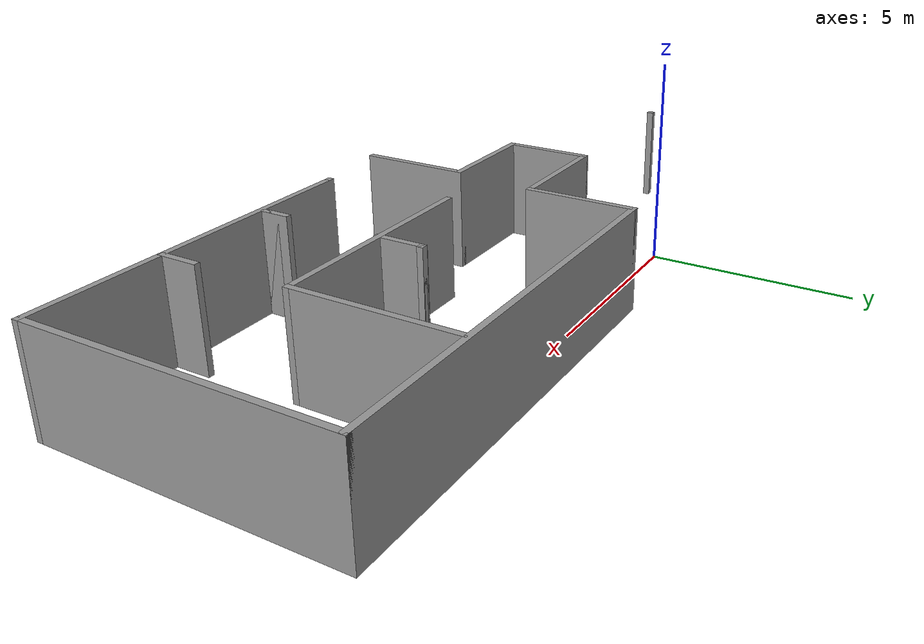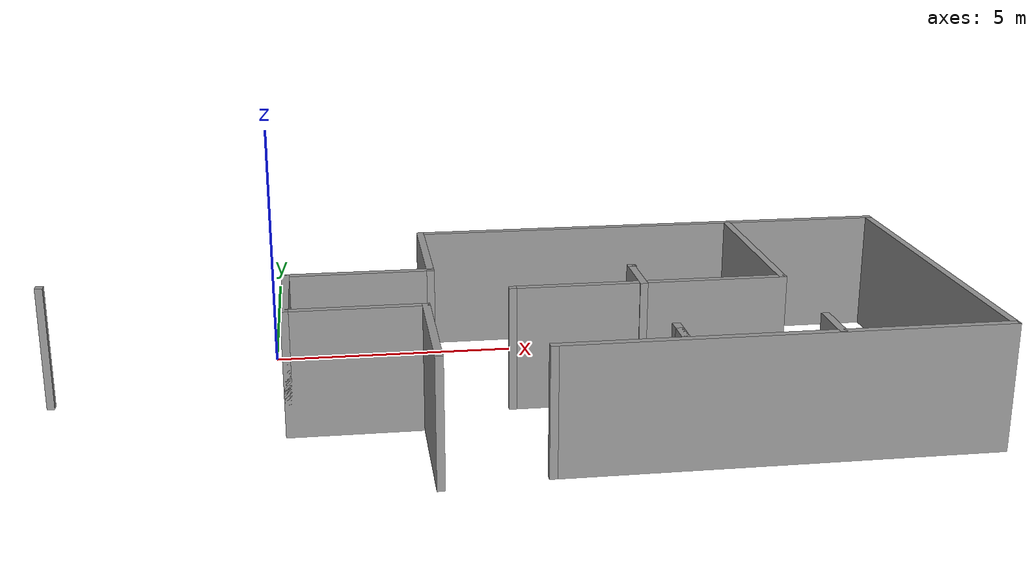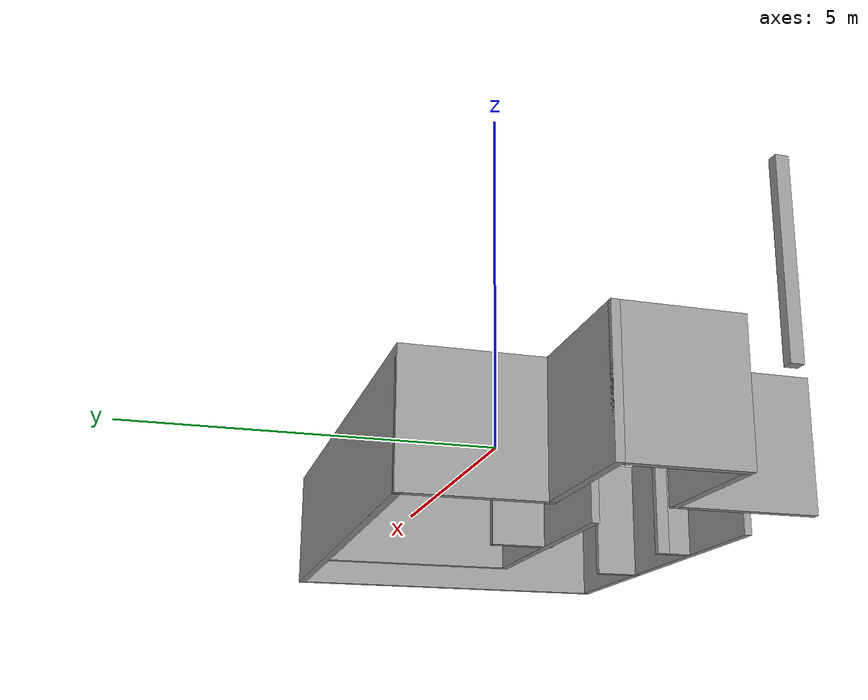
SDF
<?xml version='1.0'?>
<sdf version='1.6'>
  <model name='Untitled'>
    <pose frame=''>4.45 -2.99 0 0 -0 0</pose>
    <link name='Wall_1'>
      <collision name='Wall_1_Collision'>
        <geometry>
          <box>
            <size>0.17 0.15 2.5</size>
          </box>
        </geometry>
        <pose frame=''>0 0 1.25 0 -0 0</pose>
      </collision>
      <visual name='Wall_1_Visual'>
        <pose frame=''>0 0 1.25 0 -0 0</pose>
        <geometry>
          <box>
            <size>0.17 0.15 2.5</size>
          </box>
        </geometry>
        <material>
          <script>
            <uri>file://media/materials/scripts/gazebo.material</uri>
            <name>Gazebo/Grey</name>
          </script>
          <ambient>0 0 0 1</ambient>
        </material>
        <meta>
          <layer>0</layer>
        </meta>
      </visual>
      <pose frame=''>-8.81 0.94 0 0 -0 -1.5708</pose>
    </link>
    <link name='Wall_10'>
      <collision name='Wall_10_Collision'>
        <geometry>
          <box>
            <size>10.25 0.15 2.5</size>
          </box>
        </geometry>
        <pose frame=''>0 0 1.25 0 -0 0</pose>
      </collision>
      <visual name='Wall_10_Visual'>
        <pose frame=''>0 0 1.25 0 -0 0</pose>
        <geometry>
          <box>
            <size>10.25 0.15 2.5</size>
          </box>
        </geometry>
        <material>
          <script>
            <uri>file://media/materials/scripts/gazebo.material</uri>
            <name>Gazebo/Grey</name>
          </script>
          <ambient>1 1 1 1</ambient>
        </material>
        <meta>
          <layer>0</layer>
        </meta>
      </visual>
      <pose frame=''>3.76 3.65 0 0 -0 0</pose>
    </link>
    <link name='Wall_11'>
      <collision name='Wall_11_Collision'>
        <geometry>
          <box>
            <size>7.25 0.15 2.5</size>
          </box>
        </geometry>
        <pose frame=''>0 0 1.25 0 -0 0</pose>
      </collision>
      <visual name='Wall_11_Visual'>
        <pose frame=''>0 0 1.25 0 -0 0</pose>
        <geometry>
          <box>
            <size>7.25 0.15 2.5</size>
          </box>
        </geometry>
        <material>
          <script>
            <uri>file://media/materials/scripts/gazebo.material</uri>
            <name>Gazebo/Grey</name>
          </script>
          <ambient>1 1 1 1</ambient>
        </material>
        <meta>
          <layer>0</layer>
        </meta>
      </visual>
      <pose frame=''>8.81 0.1 0 0 -0 -1.5708</pose>
    </link>
    <link name='Wall_12'>
      <collision name='Wall_12_Collision'>
        <geometry>
          <box>
            <size>8.5 0.15 2.5</size>
          </box>
        </geometry>
        <pose frame=''>0 0 1.25 0 -0 0</pose>
      </collision>
      <visual name='Wall_12_Visual'>
        <pose frame=''>0 0 1.25 0 -0 0</pose>
        <geometry>
          <box>
            <size>8.5 0.15 2.5</size>
          </box>
        </geometry>
        <material>
          <script>
            <uri>file://media/materials/scripts/gazebo.material</uri>
            <name>Gazebo/Grey</name>
          </script>
          <ambient>1 1 1 1</ambient>
        </material>
        <meta>
          <layer>0</layer>
        </meta>
      </visual>
      <pose frame=''>4.635 -3.45 0 0 -0 3.14159</pose>
    </link>
    <link name='Wall_13'>
      <collision name='Wall_13_Collision'>
        <geometry>
          <box>
            <size>0.15 0.15 2.5</size>
          </box>
        </geometry>
        <pose frame=''>0 0 1.25 0 -0 0</pose>
      </collision>
      <visual name='Wall_13_Visual'>
        <pose frame=''>0 0 1.25 0 -0 0</pose>
        <geometry>
          <box>
            <size>0.15 0.15 2.5</size>
          </box>
        </geometry>
        <material>
          <script>
            <uri>file://media/materials/scripts/gazebo.material</uri>
            <name>Gazebo/Grey</name>
          </script>
          <ambient>1 1 1 1</ambient>
        </material>
        <meta>
          <layer>0</layer>
        </meta>
      </visual>
      <pose frame=''>0.459999 -3.45 0 0 -0 0</pose>
    </link>
    <link name='Wall_15'>
      <collision name='Wall_15_Collision'>
        <geometry>
          <box>
            <size>4 0.15 2.5</size>
          </box>
        </geometry>
        <pose frame=''>0 0 1.25 0 -0 0</pose>
      </collision>
      <visual name='Wall_15_Visual'>
        <pose frame=''>0 0 1.25 0 -0 0</pose>
        <geometry>
          <box>
            <size>4 0.15 2.5</size>
          </box>
        </geometry>
        <material>
          <script>
            <uri>file://media/materials/scripts/gazebo.material</uri>
            <name>Gazebo/Grey</name>
          </script>
          <ambient>1 1 1 1</ambient>
        </material>
        <meta>
          <layer>0</layer>
        </meta>
      </visual>
      <pose frame=''>5.53257 1.6473 0 0 -0 -1.5708</pose>
    </link>
    <link name='Wall_16'>
      <collision name='Wall_16_Collision'>
        <geometry>
          <box>
            <size>5.5 0.15 2.5</size>
          </box>
        </geometry>
        <pose frame=''>0 0 1.25 0 -0 0</pose>
      </collision>
      <visual name='Wall_16_Visual'>
        <pose frame=''>0 0 1.25 0 -0 0</pose>
        <geometry>
          <box>
            <size>5.5 0.15 2.5</size>
          </box>
        </geometry>
        <material>
          <script>
            <uri>file://media/materials/scripts/gazebo.material</uri>
            <name>Gazebo/Grey</name>
          </script>
          <ambient>1 1 1 1</ambient>
        </material>
        <meta>
          <layer>0</layer>
        </meta>
      </visual>
      <pose frame=''>2.85757 -0.277703 0 0 -0 3.14159</pose>
    </link>
    <link name='Wall_17'>
      <collision name='Wall_17_Collision'>
        <geometry>
          <box>
            <size>0.15 0.15 2.5</size>
          </box>
        </geometry>
        <pose frame=''>0 0 1.25 0 -0 0</pose>
      </collision>
      <visual name='Wall_17_Visual'>
        <pose frame=''>0 0 1.25 0 -0 0</pose>
        <geometry>
          <box>
            <size>0.15 0.15 2.5</size>
          </box>
        </geometry>
        <material>
          <script>
            <uri>file://media/materials/scripts/gazebo.material</uri>
            <name>Gazebo/Grey</name>
          </script>
          <ambient>1 1 1 1</ambient>
        </material>
        <meta>
          <layer>0</layer>
        </meta>
      </visual>
      <pose frame=''>0.182568 -0.277703 0 0 -0 0</pose>
    </link>
    <link name='Wall_19'>
      <collision name='Wall_19_Collision'>
        <geometry>
          <box>
            <size>1.25 0.15 2.5</size>
          </box>
        </geometry>
        <pose frame=''>0 0 1.25 0 -0 0</pose>
      </collision>
      <visual name='Wall_19_Visual'>
        <pose frame=''>0 0 1.25 0 -0 0</pose>
        <geometry>
          <box>
            <size>1.25 0.15 2.5</size>
          </box>
        </geometry>
        <material>
          <script>
            <uri>file://media/materials/scripts/gazebo.material</uri>
            <name>Gazebo/Grey</name>
          </script>
          <ambient>1 1 1 1</ambient>
        </material>
        <meta>
          <layer>0</layer>
        </meta>
      </visual>
      <pose frame=''>2.73955 0.238668 0 0 -0 1.5708</pose>
    </link>
    <link name='Wall_20'>
      <collision name='Wall_20_Collision'>
        <geometry>
          <box>
            <size>0.16 0.15 2.5</size>
          </box>
        </geometry>
        <pose frame=''>0 0 1.25 0 -0 0</pose>
      </collision>
      <visual name='Wall_20_Visual'>
        <pose frame=''>0 0 1.25 0 -0 0</pose>
        <geometry>
          <box>
            <size>0.16 0.15 2.5</size>
          </box>
        </geometry>
        <material>
          <script>
            <uri>file://media/materials/scripts/gazebo.material</uri>
            <name>Gazebo/Grey</name>
          </script>
          <ambient>1 1 1 1</ambient>
        </material>
        <meta>
          <layer>0</layer>
        </meta>
      </visual>
      <pose frame=''>2.74455 0.788668 0 0 -0 0</pose>
    </link>
    <link name='Wall_21'>
      <collision name='Wall_21_Collision'>
        <geometry>
          <box>
            <size>0.16 0.15 2.5</size>
          </box>
        </geometry>
        <pose frame=''>0 0 1.25 0 -0 0</pose>
      </collision>
      <visual name='Wall_21_Visual'>
        <pose frame=''>0 0 1.25 0 -0 0</pose>
        <geometry>
          <box>
            <size>0.16 0.15 2.5</size>
          </box>
        </geometry>
        <material>
          <script>
            <uri>file://media/materials/scripts/gazebo.material</uri>
            <name>Gazebo/Grey</name>
          </script>
          <ambient>1 1 1 1</ambient>
        </material>
        <meta>
          <layer>0</layer>
        </meta>
      </visual>
      <pose frame=''>2.75455 0.788668 0 0 -0 0</pose>
    </link>
    <link name='Wall_23'>
      <collision name='Wall_23_Collision'>
        <geometry>
          <box>
            <size>0.5 0.15 2.5</size>
          </box>
        </geometry>
        <pose frame=''>0 0 1.25 0 -0 0</pose>
      </collision>
      <visual name='Wall_23_Visual'>
        <pose frame=''>0 0 1.25 0 -0 0</pose>
        <geometry>
          <box>
            <size>0.5 0.15 2.5</size>
          </box>
        </geometry>
        <material>
          <script>
            <uri>file://media/materials/scripts/gazebo.material</uri>
            <name>Gazebo/Grey</name>
          </script>
          <ambient>1 1 1 1</ambient>
        </material>
        <meta>
          <layer>0</layer>
        </meta>
      </visual>
      <pose frame=''>2.79275 -3.16875 0 0 -0 1.5708</pose>
    </link>
    <link name='Wall_25'>
      <collision name='Wall_25_Collision'>
        <geometry>
          <box>
            <size>1 0.15 2.5</size>
          </box>
        </geometry>
        <pose frame=''>0 0 1.25 0 -0 0</pose>
      </collision>
      <visual name='Wall_25_Visual'>
        <pose frame=''>0 0 1.25 0 -0 0</pose>
        <geometry>
          <box>
            <size>1 0.15 2.5</size>
          </box>
        </geometry>
        <material>
          <script>
            <uri>file://media/materials/scripts/gazebo.material</uri>
            <name>Gazebo/Grey</name>
          </script>
          <ambient>1 1 1 1</ambient>
        </material>
        <meta>
          <layer>0</layer>
        </meta>
      </visual>
      <pose frame=''>5.61237 -2.99856 0 0 -0 1.5708</pose>
    </link>
    <link name='Wall_27'>
      <collision name='Wall_27_Collision'>
        <geometry>
          <box>
            <size>0.75 0.15 2.5</size>
          </box>
        </geometry>
        <pose frame=''>0 0 1.25 0 -0 0</pose>
      </collision>
      <visual name='Wall_27_Visual'>
        <pose frame=''>0 0 1.25 0 -0 0</pose>
        <geometry>
          <box>
            <size>0.75 0.15 2.5</size>
          </box>
        </geometry>
        <material>
          <script>
            <uri>file://media/materials/scripts/gazebo.material</uri>
            <name>Gazebo/Grey</name>
          </script>
          <ambient>1 1 1 1</ambient>
        </material>
        <meta>
          <layer>0</layer>
        </meta>
      </visual>
      <pose frame=''>2.79275 -3.04375 0 0 -0 1.5708</pose>
    </link>
    <link name='Wall_4'>
      <collision name='Wall_4_Collision'>
        <geometry>
          <box>
            <size>2.25 0.15 2.5</size>
          </box>
        </geometry>
        <pose frame=''>0 0 1.25 0 -0 0</pose>
      </collision>
      <visual name='Wall_4_Visual'>
        <pose frame=''>0 0 1.25 0 -0 0</pose>
        <geometry>
          <box>
            <size>2.25 0.15 2.5</size>
          </box>
        </geometry>
        <material>
          <script>
            <uri>file://media/materials/scripts/gazebo.material</uri>
            <name>Gazebo/Grey</name>
          </script>
          <ambient>1 1 1 1</ambient>
        </material>
        <meta>
          <layer>0</layer>
        </meta>
      </visual>
      <pose frame=''>-4.14 -0 0 0 -0 -1.5708</pose>
    </link>
    <link name='Wall_5'>
      <collision name='Wall_5_Collision'>
        <geometry>
          <box>
            <size>2.75 0.15 2.5</size>
          </box>
        </geometry>
        <pose frame=''>0 0 1.25 0 -0 0</pose>
      </collision>
      <visual name='Wall_5_Visual'>
        <pose frame=''>0 0 1.25 0 -0 0</pose>
        <geometry>
          <box>
            <size>2.75 0.15 2.5</size>
          </box>
        </geometry>
        <material>
          <script>
            <uri>file://media/materials/scripts/gazebo.material</uri>
            <name>Gazebo/Grey</name>
          </script>
          <ambient>1 1 1 1</ambient>
        </material>
        <meta>
          <layer>0</layer>
        </meta>
      </visual>
      <pose frame=''>-2.84 -1.05 0 0 -0 0</pose>
    </link>
    <link name='Wall_6'>
      <collision name='Wall_6_Collision'>
        <geometry>
          <box>
            <size>2.75 0.15 2.5</size>
          </box>
        </geometry>
        <pose frame=''>0 0 1.25 0 -0 0</pose>
      </collision>
      <visual name='Wall_6_Visual'>
        <pose frame=''>0 0 1.25 0 -0 0</pose>
        <geometry>
          <box>
            <size>2.75 0.15 2.5</size>
          </box>
        </geometry>
        <material>
          <script>
            <uri>file://media/materials/scripts/gazebo.material</uri>
            <name>Gazebo/Grey</name>
          </script>
          <ambient>1 1 1 1</ambient>
        </material>
        <meta>
          <layer>0</layer>
        </meta>
      </visual>
      <pose frame=''>-1.54 -2.35 0 0 -0 -1.5708</pose>
    </link>
    <link name='Wall_8'>
      <collision name='Wall_8_Collision'>
        <geometry>
          <box>
            <size>3 0.15 2.5</size>
          </box>
        </geometry>
        <pose frame=''>0 0 1.25 0 -0 0</pose>
      </collision>
      <visual name='Wall_8_Visual'>
        <pose frame=''>0 0 1.25 0 -0 0</pose>
        <geometry>
          <box>
            <size>3 0.15 2.5</size>
          </box>
        </geometry>
        <material>
          <script>
            <uri>file://media/materials/scripts/gazebo.material</uri>
            <name>Gazebo/Grey</name>
          </script>
          <ambient>1 1 1 1</ambient>
        </material>
        <meta>
          <layer>0</layer>
        </meta>
      </visual>
      <pose frame=''>-2.715 1.05 0 0 -0 0</pose>
    </link>
    <link name='Wall_9'>
      <collision name='Wall_9_Collision'>
        <geometry>
          <box>
            <size>2.75 0.15 2.5</size>
          </box>
        </geometry>
        <pose frame=''>0 0 1.25 0 -0 0</pose>
      </collision>
      <visual name='Wall_9_Visual'>
        <pose frame=''>0 0 1.25 0 -0 0</pose>
        <geometry>
          <box>
            <size>2.75 0.15 2.5</size>
          </box>
        </geometry>
        <material>
          <script>
            <uri>file://media/materials/scripts/gazebo.material</uri>
            <name>Gazebo/Grey</name>
          </script>
          <ambient>1 1 1 1</ambient>
        </material>
        <meta>
          <layer>0</layer>
        </meta>
      </visual>
      <pose frame=''>-1.29 2.35 0 0 -0 1.5708</pose>
    </link>
    <static>1</static>
  </model>
</sdf>
